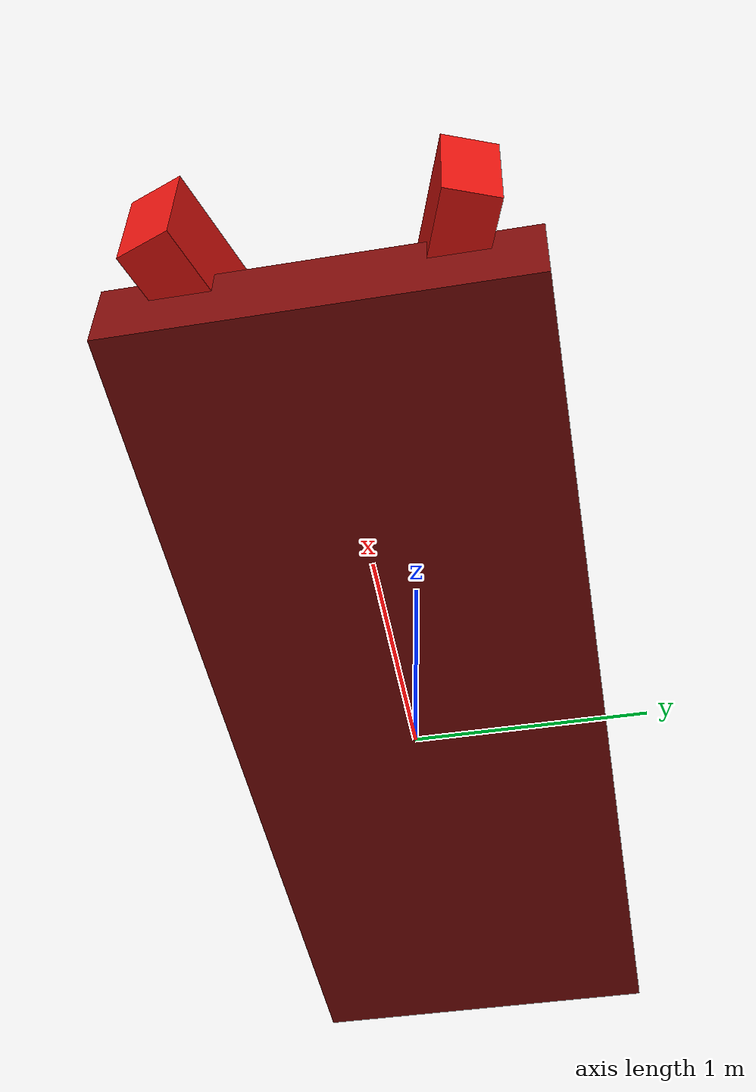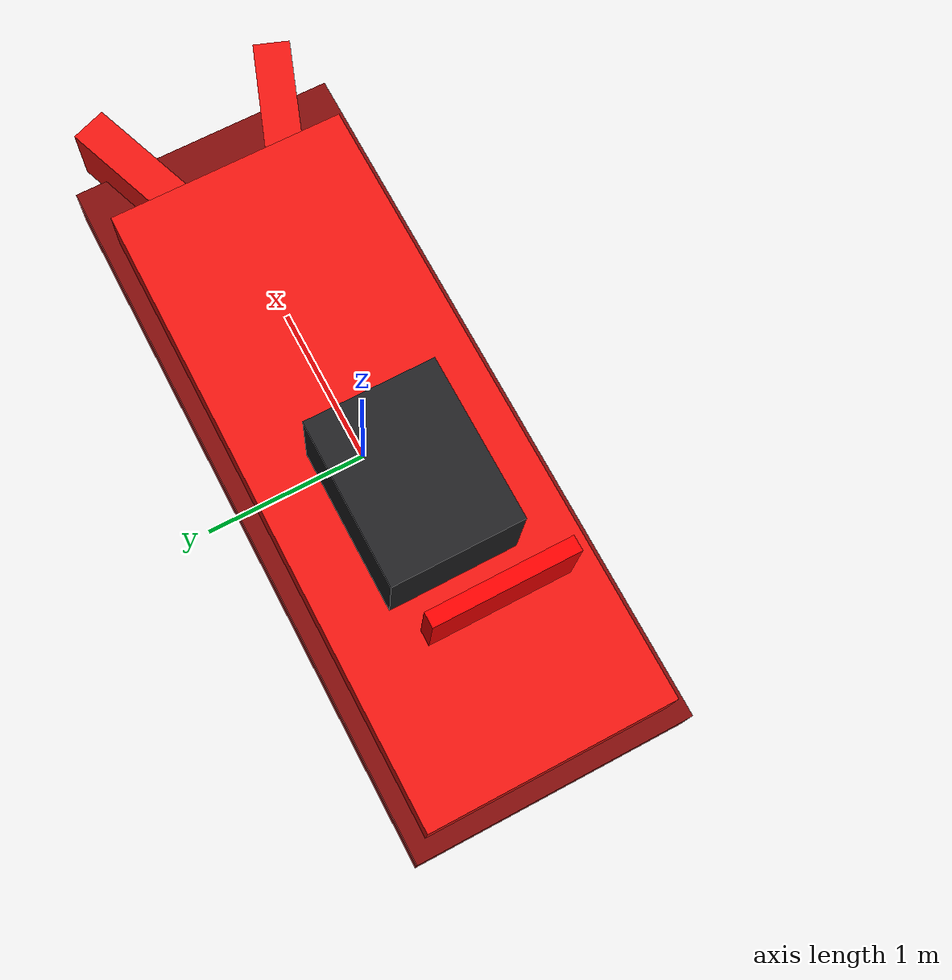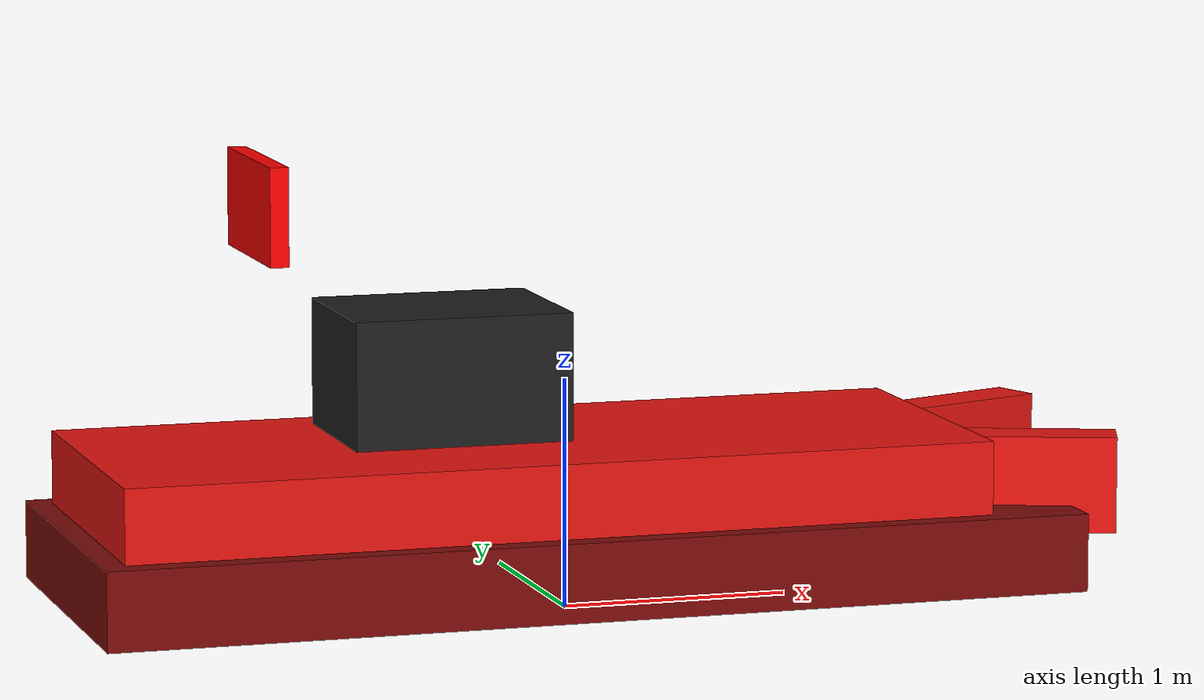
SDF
<?xml version="1.0"?>
<sdf version="1.10">
  <model name="defense_enemy_01_boat">
    <pose>0 0 0.45 0 0 0</pose>
    <link name="hull">
      <inertial>
        <mass>90</mass>
        <inertia>
          <ixx>35</ixx>
          <iyy>75</iyy>
          <izz>85</izz>
          <ixy>0</ixy>
          <ixz>0</ixz>
          <iyz>0</iyz>
        </inertia>
      </inertial>
      <collision name="hull_collision">
        <geometry>
          <box>
            <size>4.2 1.7 0.55</size>
          </box>
        </geometry>
      </collision>
      <visual name="lower_hull">
        <pose>-0.05 0 -0.18 0 0 0</pose>
        <geometry>
          <box>
            <size>4.3 1.65 0.34</size>
          </box>
        </geometry>
        <material>
          <ambient>0.18 0.015 0.015 1</ambient>
          <diffuse>0.48 0.04 0.035 1</diffuse>
          <specular>0.18 0.08 0.08 1</specular>
        </material>
      </visual>
      <visual name="upper_hull">
        <pose>-0.2 0 0.10 0 0 0</pose>
        <geometry>
          <box>
            <size>3.8 1.45 0.42</size>
          </box>
        </geometry>
        <material>
          <ambient>0.36 0.02 0.02 1</ambient>
          <diffuse>0.90 0.08 0.06 1</diffuse>
          <specular>0.22 0.08 0.08 1</specular>
        </material>
      </visual>
      <visual name="bow_left">
        <pose>1.85 0.42 0.08 0 0 0.35</pose>
        <geometry>
          <box>
            <size>1.0 0.22 0.42</size>
          </box>
        </geometry>
        <material>
          <ambient>0.36 0.02 0.02 1</ambient>
          <diffuse>0.90 0.08 0.06 1</diffuse>
        </material>
      </visual>
      <visual name="bow_right">
        <pose>1.85 -0.42 0.08 0 0 -0.35</pose>
        <geometry>
          <box>
            <size>1.0 0.22 0.42</size>
          </box>
        </geometry>
        <material>
          <ambient>0.36 0.02 0.02 1</ambient>
          <diffuse>0.90 0.08 0.06 1</diffuse>
        </material>
      </visual>
      <visual name="cabin">
        <pose>-0.55 0 0.62 0 0 0</pose>
        <geometry>
          <box>
            <size>0.95 0.75 0.55</size>
          </box>
        </geometry>
        <material>
          <ambient>0.05 0.05 0.055 1</ambient>
          <diffuse>0.12 0.12 0.13 1</diffuse>
        </material>
      </visual>
      <visual name="enemy_flag">
        <pose>-1.35 0 1.35 0 0 0</pose>
        <geometry>
          <box>
            <size>0.08 0.75 0.42</size>
          </box>
        </geometry>
        <material>
          <ambient>0.70 0 0 1</ambient>
          <diffuse>1 0 0 1</diffuse>
        </material>
      </visual>
    </link>
    <plugin
      filename="gz-sim-velocity-control-system"
      name="gz::sim::systems::VelocityControl">
      <topic>/model/enemy_01/cmd_vel</topic>
      <control_linear_velocity>true</control_linear_velocity>
      <control_angular_velocity>true</control_angular_velocity>
    </plugin>
    <plugin
      filename="libBoatWaveFollower.so"
      name="gz::sim::systems::BoatWaveFollower">
      <mean_z>0.50</mean_z>
      <heave_amplitude>0.09</heave_amplitude>
      <roll_amplitude>0.045</roll_amplitude>
      <pitch_amplitude>0.04</pitch_amplitude>
      <primary_frequency>1.15</primary_frequency>
      <secondary_frequency>1.65</secondary_frequency>
      <wave_number_x>0.34</wave_number_x>
      <wave_number_y>0.23</wave_number_y>
    </plugin>
  </model>
</sdf>
